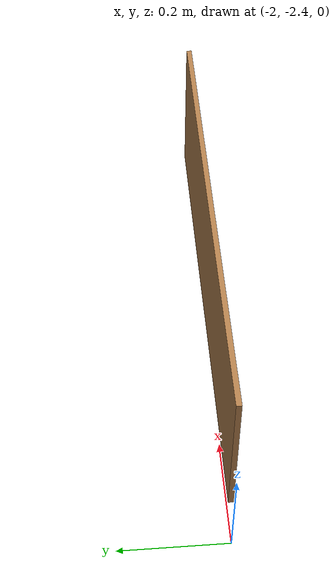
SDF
<?xml version='1.0'?>
<sdf version='1.7'>
  <model name='Wall_0_9m'>
    <pose>-0.960118 -1.2064 0 0 -0 0</pose>
    <link name='Wall_2'>
      <collision name='Wall_2_Collision'>
        <geometry>
          <box>
            <size>0.9 0.01 0.3</size>
          </box>
        </geometry>
        <pose>0 0 0.15 0 -0 0</pose>
      </collision>
      <visual name='Wall_2_Visual'>
        <pose>0 0 0.15 0 -0 0</pose>
        <geometry>
          <box>
            <size>0.9 0.01 0.3</size>
          </box>
        </geometry>
        <material>
          <script>
            <uri>file://media/materials/scripts/gazebo.material</uri>
            <name>Gazebo/Wood</name>
          </script>
          <ambient>1 1 1 1</ambient>
        </material>
        <meta>
          <layer>0</layer>
        </meta>
      </visual>
      <pose>-0.510118 -1.2014 0 0 -0 3.14159</pose>
    </link>
    <static>1</static>
  </model>
</sdf>
